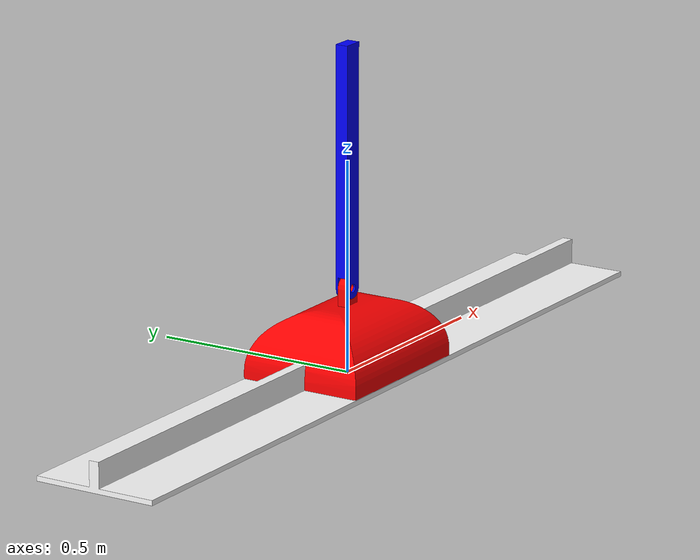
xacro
<?xml version="1.0" encoding="utf-8"?>
<robot
        name="cart_pole_3d">

    <link
            name="base_link">
        <inertial>
            <origin
                    xyz="0 0.016588 -7.0567E-17"
                    rpy="0 0 0"/>
            <mass
                    value="10.2"/>
            <inertia
                    ixx="0.057887"
                    ixy="-2.0329E-17"
                    ixz="9.6317E-18"
                    iyy="3.4542"
                    iyz="-3.7197E-18"
                    izz="3.4037"/>
        </inertial>
        <visual>
            <origin
                    xyz="0 0 0"
                    rpy="0 0 0"/>
            <geometry>
                <mesh
                        filename="package://cart_pole_description/meshes/base_link.STL"/>
            </geometry>
            <material
                    name="White">
                <color
                        rgba="1 1 1 1"/>
            </material>
        </visual>
        <collision>
            <origin
                    xyz="0 0 0"
                    rpy="0 0 0"/>
            <geometry>
                <mesh
                        filename="package://cart_pole_description/meshes/base_link.STL"/>
            </geometry>
        </collision>
    </link>

    <gazebo reference="base_Link">
        <kp>1000</kp>
        <kd>1000</kd>
        <mu1>0.5</mu1>
        <mu2>0.5</mu2>
        <material>Gazebo/White</material>
    </gazebo>

    <!-- Used for fixing robot to Gazebo 'base_link' -->
    <link name="world"/>
    <joint name="fixed" type="fixed">
        <parent link="world"/>
        <child link="base_link"/>
    </joint>

    <link
            name="cart_Link">
        <inertial>
            <origin
                    xyz="8.7244E-18 -1.0887E-07 0.004059"
                    rpy="0 0 0"/>
            <mass
                    value="13.204"/>
            <inertia
                    ixx="0.10629"
                    ixy="8.1278E-08"
                    ixz="-2.9575E-18"
                    iyy="0.17178"
                    iyz="4.5022E-07"
                    izz="0.2371"/>
        </inertial>
        <visual>
            <origin
                    xyz="0 0 0"
                    rpy="0 0 0"/>
            <geometry>
                <mesh
                        filename="package://cart_pole_description/meshes/cart_Link.STL"/>
            </geometry>
            <material
                    name="Red">
                <color
                        rgba="1 0 0 1"/>
            </material>
        </visual>
        <collision>
            <origin
                    xyz="0 0 0"
                    rpy="0 0 0"/>
            <geometry>
                <mesh
                        filename="package://cart_pole_description/meshes/cart_Link.STL"/>
            </geometry>
        </collision>
    </link>

    <joint
            name="base_cart_joint"
            type="prismatic">
        <origin
                xyz="0 0 0.072"
                rpy="0 0 0"/>
        <parent
                link="base_link"/>
        <child
                link="cart_Link"/>
        <axis
                xyz="1 0 0"/>
        <limit
                lower="-2"
                upper="2"
                effort="2000000"
                velocity="100000"/>
    </joint>

    <gazebo reference="cart_Link">
        <kp>1000</kp>
        <kd>1000</kd>
        <mu1>0.5</mu1>
        <mu2>0.5</mu2>
        <material>Gazebo/Red</material>
    </gazebo>

    <link
            name="pole_Link">
        <inertial>
            <origin
                    xyz="4.3315E-18 1.3127E-16 0.29235"
                    rpy="0 0 0"/>
            <mass
                    value="0.83758"/>
            <inertia
                    ixx="0.022017"
                    ixy="1.6996E-20"
                    ixz="-3.6264E-19"
                    iyy="0.022127"
                    iyz="-1.0739E-17"
                    izz="0.00023906"/>
        </inertial>
        <visual>
            <origin
                    xyz="0 0 0"
                    rpy="0 0 0"/>
            <geometry>
                <mesh
                        filename="package://cart_pole_description/meshes/pole_Link.STL"/>
            </geometry>
            <material
                    name="Blue">
                <color
                        rgba="0 0 1 1"/>
            </material>
        </visual>
        <collision>
            <origin
                    xyz="0 0 0"
                    rpy="0 0 0"/>
            <geometry>
                <mesh
                        filename="package://cart_pole_description/meshes/pole_Link.STL"/>
            </geometry>
        </collision>
    </link>

    <gazebo reference="pole_Link">
        <kp>1000.0</kp>
        <kd>1000.0</kd>
        <mu1>0.5</mu1>
        <mu2>0.5</mu2>
        <material>Gazebo/Blue</material>
    </gazebo>

    <joint name="cart_pole_joint" type="revolute">
        <origin
                xyz="0 0 0.1305"
                rpy="0 0 0"/>
        <parent link="cart_Link"/>
        <child link="pole_Link"/>
        <axis xyz="0 -1 0"/>
        <limit
                lower="-1"
                upper="1"
                effort="1"
                velocity="100"/>
    </joint>

    <gazebo>
        <plugin name="p3d_base_controller" filename="libgazebo_ros_p3d.so">
            <robotNamespace>/cart_pole_3d</robotNamespace>
            <alwaysOn>true</alwaysOn>
            <updateRate>50.0</updateRate>
            <bodyName>cart_Link</bodyName>
            <topicName>odom</topicName>
            <gaussianNoise>0.01</gaussianNoise>
            <frameName>world</frameName>
            <xyzOffsets>0 0 0</xyzOffsets>
            <rpyOffsets>0 0 0</rpyOffsets>
        </plugin>
    </gazebo>

    <gazebo>
        <plugin name="imu_plugin" filename="libgazebo_ros_imu.so">
            <robotNamespace>/cart_pole_3d</robotNamespace>
            <alwaysOn>true</alwaysOn>
            <bodyName>pole_Link</bodyName>
            <topicName>imu</topicName>
            <serviceName>imu_service</serviceName>
            <gaussianNoise>0.8</gaussianNoise>
            <updateRate>50.0</updateRate>
        </plugin>
    </gazebo>

    <gazebo>
        <plugin name="gazebo_ros_control" filename="libgazebo_ros_control.so">
            <robotNamespace>/cart_pole_3d</robotNamespace>
        </plugin>
    </gazebo>

    <transmission name="cart_pole_joint_transmission">
        <type>transmission_interface/SimpleTransmission</type>
        <joint name="cart_pole_joint">
            <hardwareInterface>hardware_interface/EffortJointInterface</hardwareInterface>
        </joint>
        <actuator name="cart_pole_joint_motor">
            <hardwareInterface>hardware_interface/EffortJointInterface</hardwareInterface>
            <mechanicalReduction>1</mechanicalReduction>
        </actuator>
    </transmission>

    <transmission name="linear_cart_joint_transmission">
        <type>transmission_interface/SimpleTransmission</type>
        <joint name="base_cart_joint">
            <hardwareInterface>hardware_interface/EffortJointInterface</hardwareInterface>
        </joint>
        <actuator name="linear_cart_joint_motor">
            <hardwareInterface>hardware_interface/EffortJointInterface</hardwareInterface>
            <mechanicalReduction>1</mechanicalReduction>
        </actuator>
    </transmission>

</robot>
